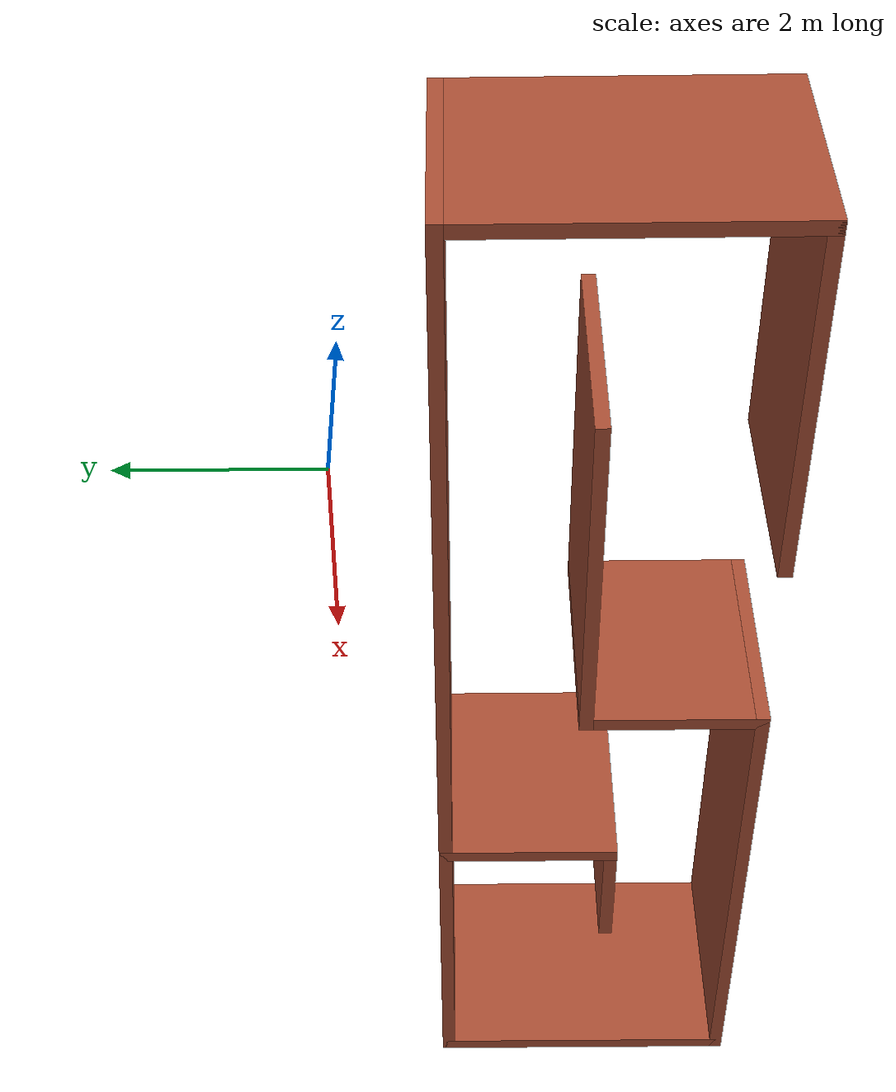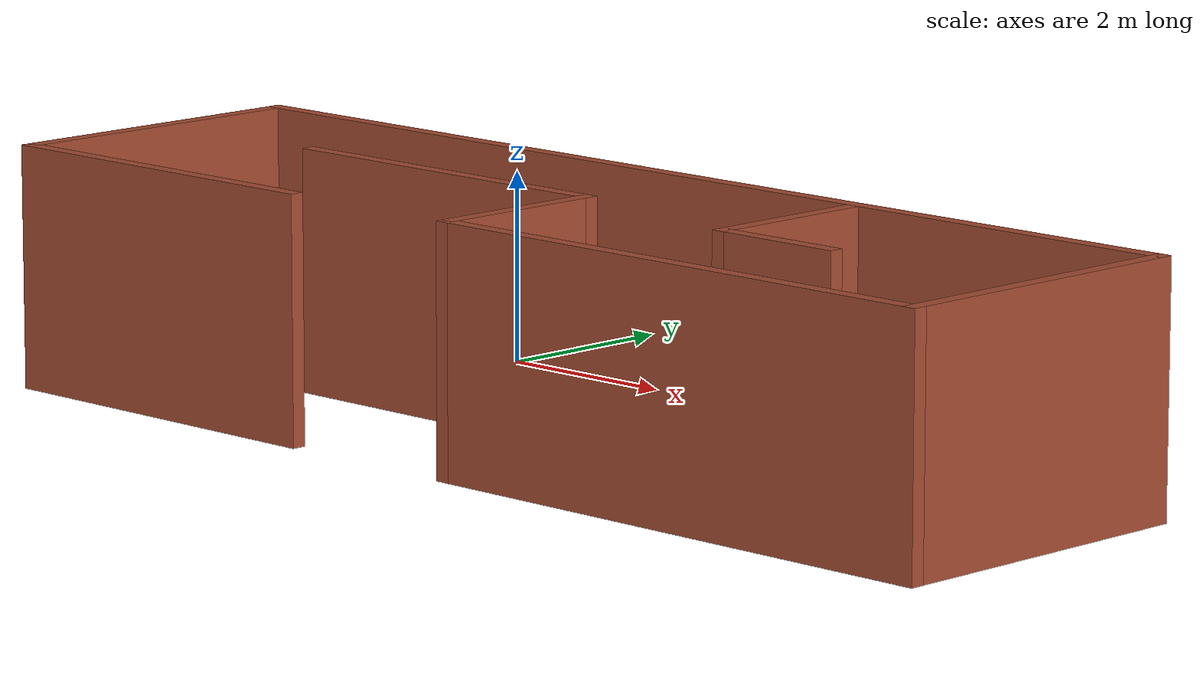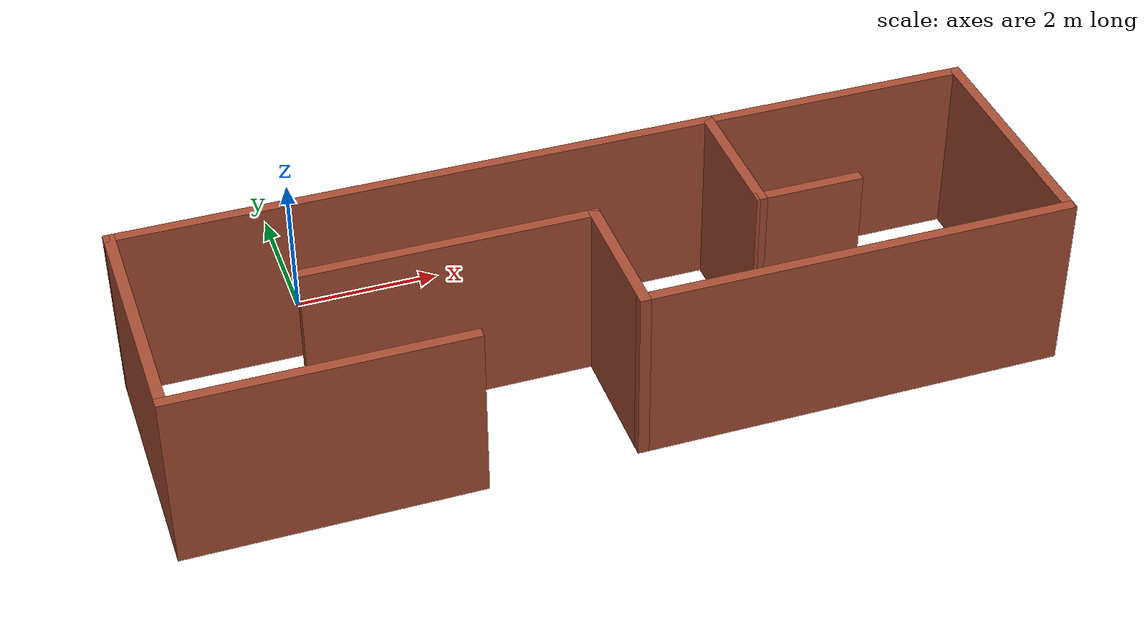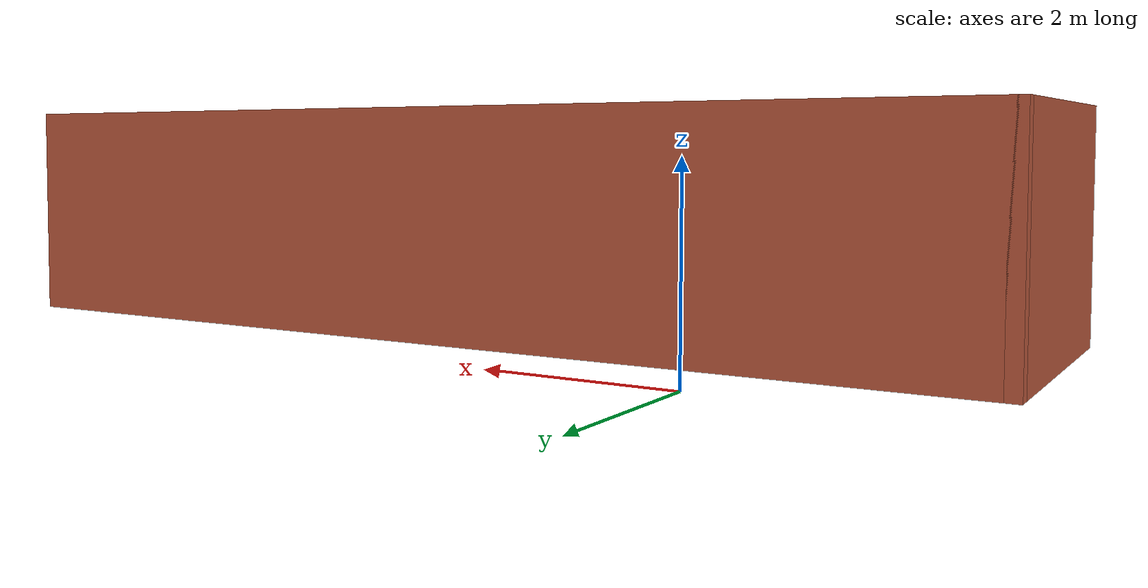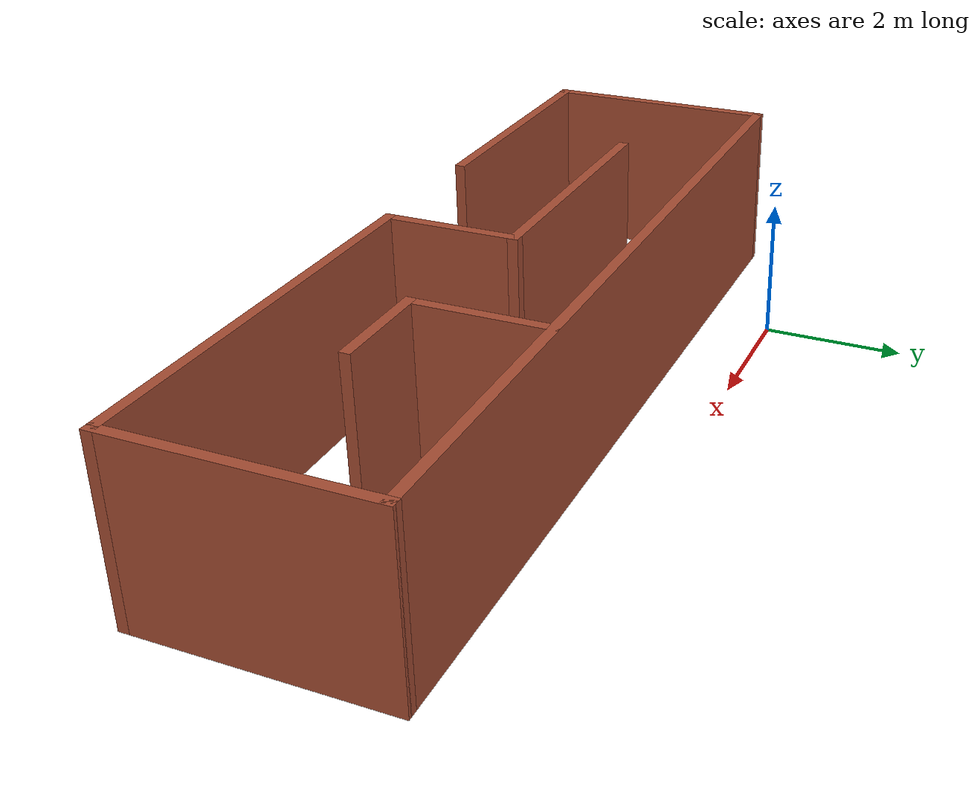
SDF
<?xml version='1.0'?>
<sdf version='1.7'>
  <model name='myworld1'>
    <pose>3.415 -2.2225 0 0 -0 0</pose>
    <link name='Wall_0'>
      <collision name='Wall_0_Collision'>
        <geometry>
          <box>
            <size>3.5 0.15 2.5</size>
          </box>
        </geometry>
        <pose>0 0 1.25 0 -0 0</pose>
      </collision>
      <visual name='Wall_0_Visual'>
        <pose>0 0 1.25 0 -0 0</pose>
        <geometry>
          <box>
            <size>3.5 0.15 2.5</size>
          </box>
        </geometry>
        <material>
          <script>
            <uri>file://media/materials/scripts/gazebo.material</uri>
            <name>Gazebo/Bricks</name>
          </script>
          <ambient>0.996078 0.47451 0.0196078 1</ambient>
        </material>
        <meta>
          <layer>0</layer>
        </meta>
      </visual>
      <pose>-5.925 -0.4725 0 0 -0 -1.5708</pose>
    </link>
    <link name='Wall_1'>
      <collision name='Wall_1_Collision'>
        <geometry>
          <box>
            <size>4 0.15 2.5</size>
          </box>
        </geometry>
        <pose>0 0 1.25 0 -0 0</pose>
      </collision>
      <visual name='Wall_1_Visual'>
        <pose>0 0 1.25 0 -0 0</pose>
        <geometry>
          <box>
            <size>4 0.15 2.5</size>
          </box>
        </geometry>
        <material>
          <script>
            <uri>file://media/materials/scripts/gazebo.material</uri>
            <name>Gazebo/Bricks</name>
          </script>
          <ambient>0.996078 0.47451 0.0196078 1</ambient>
        </material>
        <meta>
          <layer>0</layer>
        </meta>
      </visual>
      <pose>-4 -2.1475 0 0 -0 0</pose>
    </link>
    <link name='Wall_10'>
      <collision name='Wall_10_Collision'>
        <geometry>
          <box>
            <size>1.5 0.15 2.5</size>
          </box>
        </geometry>
        <pose>0 0 1.25 0 -0 0</pose>
      </collision>
      <visual name='Wall_10_Visual'>
        <pose>0 0 1.25 0 -0 0</pose>
        <geometry>
          <box>
            <size>1.5 0.15 2.5</size>
          </box>
        </geometry>
        <material>
          <script>
            <uri>file://media/materials/scripts/gazebo.material</uri>
            <name>Gazebo/Bricks</name>
          </script>
          <ambient>0.996078 0.47451 0.0196078 1</ambient>
        </material>
        <meta>
          <layer>0</layer>
        </meta>
      </visual>
      <pose>2.9 -0.6575 0 0 -0 0</pose>
    </link>
    <link name='Wall_3'>
      <collision name='Wall_3_Collision'>
        <geometry>
          <box>
            <size>12 0.15 2.5</size>
          </box>
        </geometry>
        <pose>0 0 1.25 0 -0 0</pose>
      </collision>
      <visual name='Wall_3_Visual'>
        <pose>0 0 1.25 0 -0 0</pose>
        <geometry>
          <box>
            <size>12 0.15 2.5</size>
          </box>
        </geometry>
        <material>
          <script>
            <uri>file://media/materials/scripts/gazebo.material</uri>
            <name>Gazebo/Bricks</name>
          </script>
          <ambient>0.996078 0.47451 0.0196078 1</ambient>
        </material>
        <meta>
          <layer>0</layer>
        </meta>
      </visual>
      <pose>0 1.2025 0 0 -0 0</pose>
    </link>
    <link name='Wall_4'>
      <collision name='Wall_4_Collision'>
        <geometry>
          <box>
            <size>3.5 0.15 2.5</size>
          </box>
        </geometry>
        <pose>0 0 1.25 0 -0 0</pose>
      </collision>
      <visual name='Wall_4_Visual'>
        <pose>0 0 1.25 0 -0 0</pose>
        <geometry>
          <box>
            <size>3.5 0.15 2.5</size>
          </box>
        </geometry>
        <material>
          <script>
            <uri>file://media/materials/scripts/gazebo.material</uri>
            <name>Gazebo/Bricks</name>
          </script>
          <ambient>0.996078 0.47451 0.0196078 1</ambient>
        </material>
        <meta>
          <layer>0</layer>
        </meta>
      </visual>
      <pose>5.925 -0.4725 0 0 -0 -1.5708</pose>
    </link>
    <link name='Wall_5'>
      <collision name='Wall_5_Collision'>
        <geometry>
          <box>
            <size>6 0.15 2.5</size>
          </box>
        </geometry>
        <pose>0 0 1.25 0 -0 0</pose>
      </collision>
      <visual name='Wall_5_Visual'>
        <pose>0 0 1.25 0 -0 0</pose>
        <geometry>
          <box>
            <size>6 0.15 2.5</size>
          </box>
        </geometry>
        <material>
          <script>
            <uri>file://media/materials/scripts/gazebo.material</uri>
            <name>Gazebo/Bricks</name>
          </script>
          <ambient>0.996078 0.47451 0.0196078 1</ambient>
        </material>
        <meta>
          <layer>0</layer>
        </meta>
      </visual>
      <pose>3 -2.1475 0 0 -0 3.14159</pose>
    </link>
    <link name='Wall_6'>
      <collision name='Wall_6_Collision'>
        <geometry>
          <box>
            <size>2 0.15 2.5</size>
          </box>
        </geometry>
        <pose>0 0 1.25 0 -0 0</pose>
      </collision>
      <visual name='Wall_6_Visual'>
        <pose>0 0 1.25 0 -0 0</pose>
        <geometry>
          <box>
            <size>2 0.15 2.5</size>
          </box>
        </geometry>
        <material>
          <script>
            <uri>file://media/materials/scripts/gazebo.material</uri>
            <name>Gazebo/Bricks</name>
          </script>
          <ambient>0.996078 0.47451 0.0196078 1</ambient>
        </material>
        <meta>
          <layer>0</layer>
        </meta>
      </visual>
      <pose>0.075 -1.2225 0 0 -0 1.5708</pose>
    </link>
    <link name='Wall_7'>
      <collision name='Wall_7_Collision'>
        <geometry>
          <box>
            <size>4 0.15 2.5</size>
          </box>
        </geometry>
        <pose>0 0 1.25 0 -0 0</pose>
      </collision>
      <visual name='Wall_7_Visual'>
        <pose>0 0 1.25 0 -0 0</pose>
        <geometry>
          <box>
            <size>4 0.15 2.5</size>
          </box>
        </geometry>
        <material>
          <script>
            <uri>file://media/materials/scripts/gazebo.material</uri>
            <name>Gazebo/Bricks</name>
          </script>
          <ambient>0.996078 0.47451 0.0196078 1</ambient>
        </material>
        <meta>
          <layer>0</layer>
        </meta>
      </visual>
      <pose>-1.85 -0.2975 0 0 -0 3.14159</pose>
    </link>
    <link name='Wall_9'>
      <collision name='Wall_9_Collision'>
        <geometry>
          <box>
            <size>2 0.15 2.5</size>
          </box>
        </geometry>
        <pose>0 0 1.25 0 -0 0</pose>
      </collision>
      <visual name='Wall_9_Visual'>
        <pose>0 0 1.25 0 -0 0</pose>
        <geometry>
          <box>
            <size>2 0.15 2.5</size>
          </box>
        </geometry>
        <material>
          <script>
            <uri>file://media/materials/scripts/gazebo.material</uri>
            <name>Gazebo/Bricks</name>
          </script>
          <ambient>0.996078 0.47451 0.0196078 1</ambient>
        </material>
        <meta>
          <layer>0</layer>
        </meta>
      </visual>
      <pose>2.225 0.2675 0 0 -0 -1.5708</pose>
    </link>
    <static>1</static>
  </model>
</sdf>
